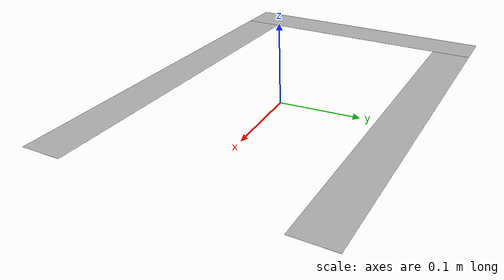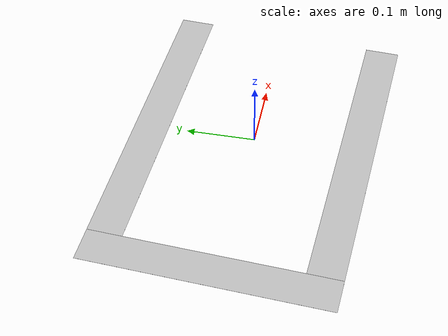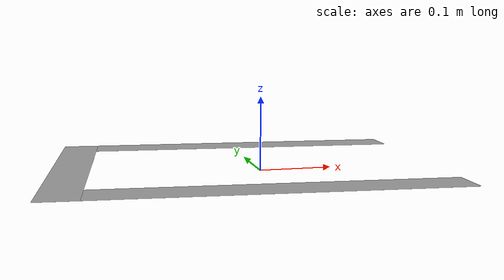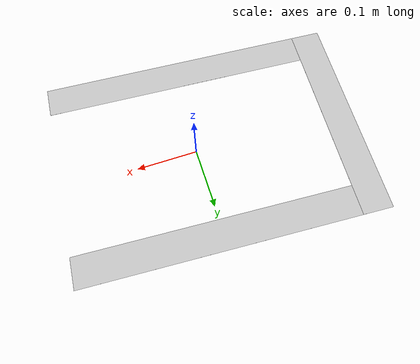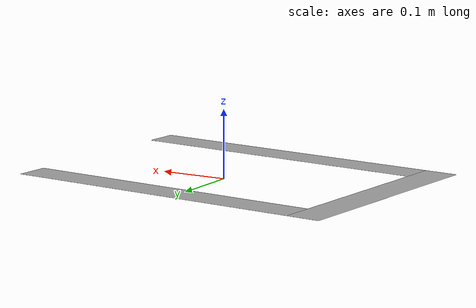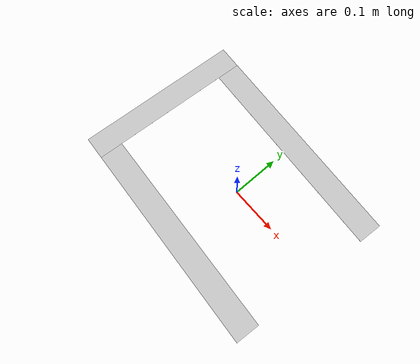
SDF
<?xml version="1.0"?>
<sdf version="1.4">
	<model name="parking_space">
		<static>true</static>
		<link name="link">
			<pose>0 0 .01 0 0 1.507</pose>
			<visual name="visual">
				<pose> -.15 0 0 0 0 0  </pose>
				<cast_shadows>false</cast_shadows>
				<geometry>
					<plane>
						<normal>0 0 1</normal>
						<size>.05 .45</size>
					</plane>
				</geometry>
			</visual>
			<visual name="visual_2">
				<pose> .15 0 0 0 0 0  </pose>
				<cast_shadows>false</cast_shadows>
				<geometry>
					<plane>
						<normal>0 0 1</normal>
						<size>.05 .45</size>
					</plane>
				</geometry>
			</visual>
			<visual name="visual_3">
				<pose> 0 .25 0 0 0 0  </pose>
				<cast_shadows>false</cast_shadows>
				<geometry>
					<plane>
						<normal>0 0 1</normal>
						<size>.35 .05</size>
					</plane>
				</geometry>
			</visual>

		</link>
	</model>
</sdf>
